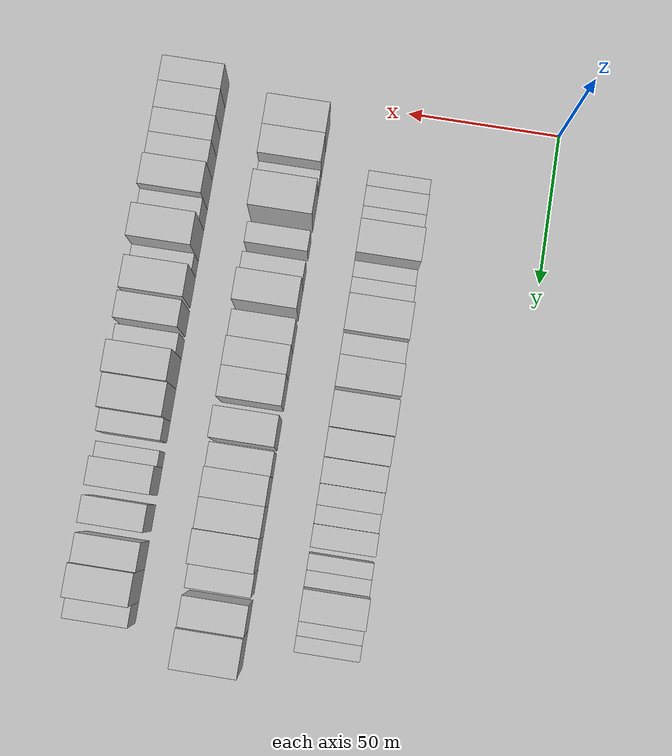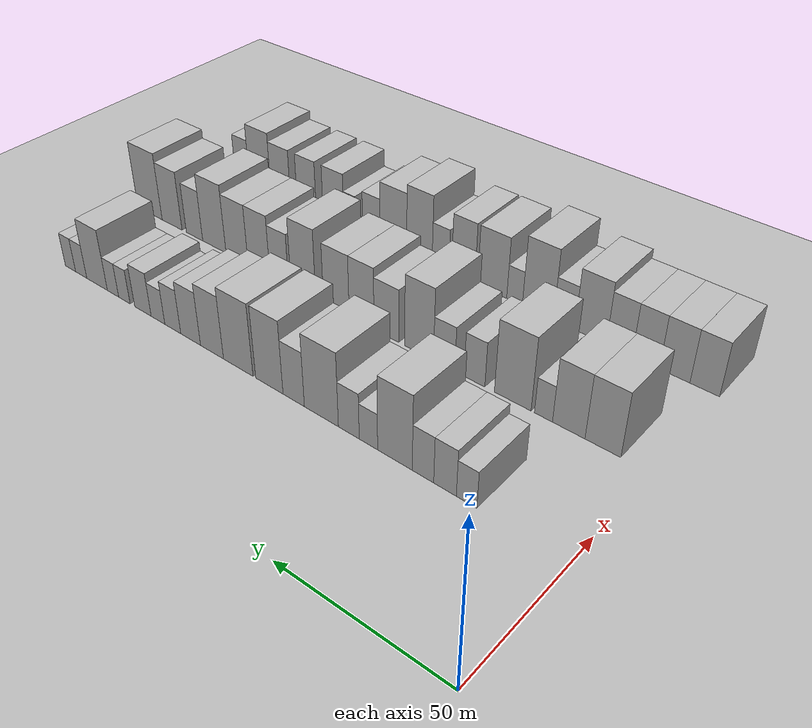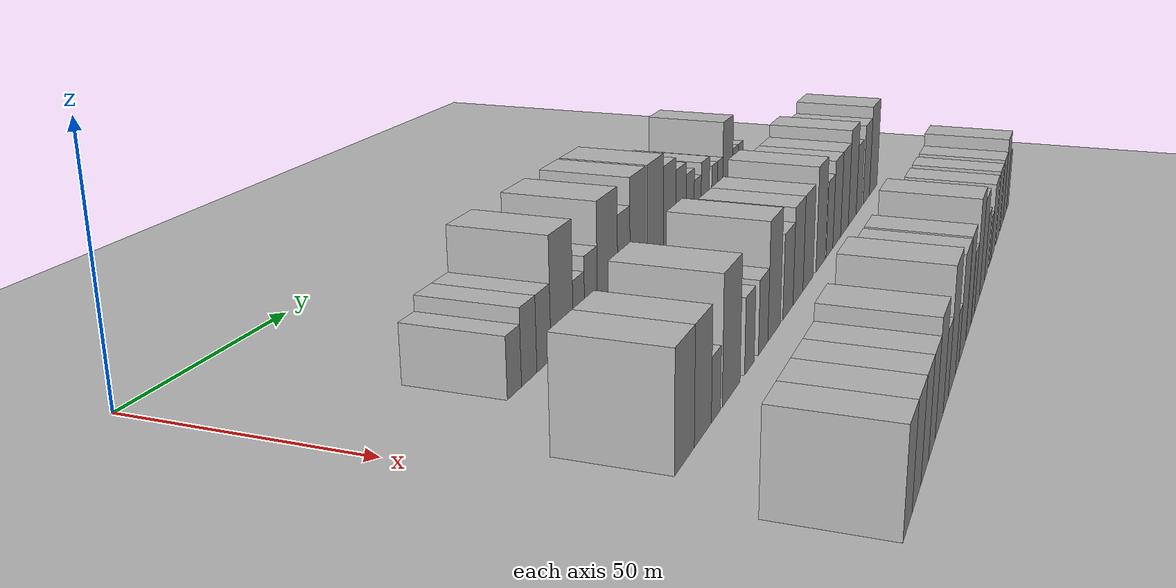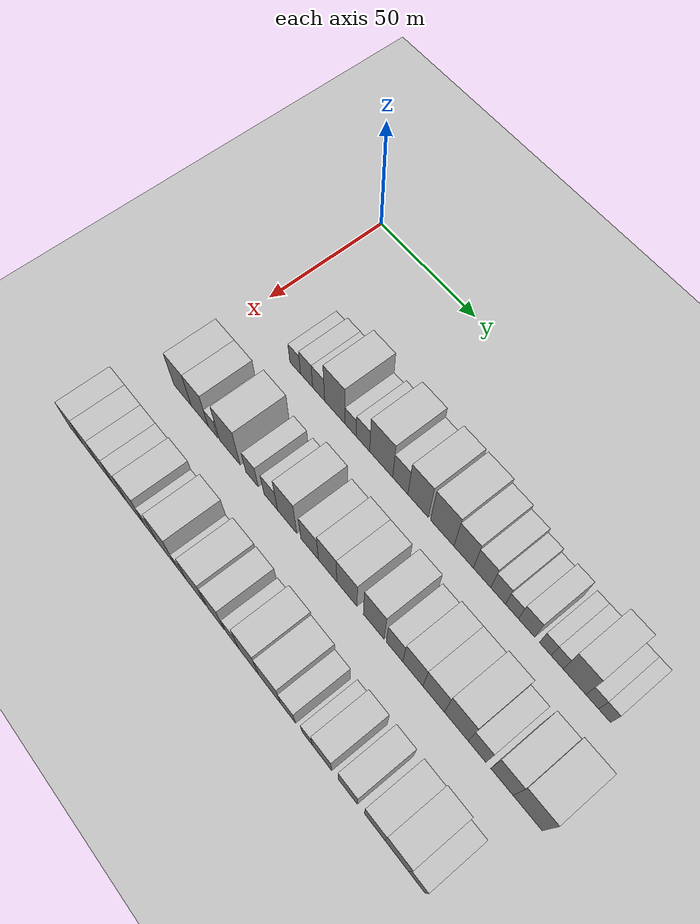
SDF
<sdf version="1.6">
 <world name="default">
  <include><name>ground_plane_1</name><uri>model://HANNAS_ground_plane</uri></include>
  <include>
   <name>ground_plane_2</name>
   <uri>model://HANNAS_ground_plane</uri>
   <pose>100 0 0  0 0 0</pose>
  </include>
  <model name="building_38">
   <static>1</static>
   <pose>50.0000 27.5653 0 0.000000 0.000000 0.000000</pose>
   <link name="link">
    <pose>0 0 6.00 0 0 0</pose>
    <collision name="collision"><geometry><box><size>20.0000 5.8085 12.0000</size></box></geometry></collision>
    <visual name="visual">
     <cast_shadows>0</cast_shadows>
     <geometry><box><size>20.0000 5.8085 12.0000</size></box></geometry>
     <material>
      <script>
       <uri>model://HANNAS_wall/materials/scripts</uri>
       <uri>model://HANNAS_wall/materials/textures</uri>
       <name>vrc/HANNAS_wall</name>
      </script>
     </material>
    </visual>
   </link>
  </model>
  <model name="building_39">
   <static>1</static>
   <pose>50.0000 33.7548 0 0.000000 0.000000 0.000000</pose>
   <link name="link">
    <pose>0 0 7.50 0 0 0</pose>
    <collision name="collision"><geometry><box><size>20.0000 6.5705 15.0000</size></box></geometry></collision>
    <visual name="visual">
     <cast_shadows>0</cast_shadows>
     <geometry><box><size>20.0000 6.5705 15.0000</size></box></geometry>
     <material>
      <script>
       <uri>model://HANNAS_wall/materials/scripts</uri>
       <uri>model://HANNAS_wall/materials/textures</uri>
       <name>vrc/HANNAS_wall</name>
      </script>
     </material>
    </visual>
   </link>
  </model>
  <model name="building_40">
   <static>1</static>
   <pose>50.0000 40.2345 0 0.000000 0.000000 0.000000</pose>
   <link name="link">
    <pose>0 0 7.50 0 0 0</pose>
    <collision name="collision"><geometry><box><size>20.0000 6.3889 15.0000</size></box></geometry></collision>
    <visual name="visual">
     <cast_shadows>0</cast_shadows>
     <geometry><box><size>20.0000 6.3889 15.0000</size></box></geometry>
     <material>
      <script>
       <uri>model://HANNAS_wall/materials/scripts</uri>
       <uri>model://HANNAS_wall/materials/textures</uri>
       <name>vrc/HANNAS_wall</name>
      </script>
     </material>
    </visual>
   </link>
  </model>
  <model name="building_41">
   <static>1</static>
   <pose>50.0000 48.7555 0 0.000000 0.000000 0.000000</pose>
   <link name="link">
    <pose>0 0 12.00 0 0 0</pose>
    <collision name="collision"><geometry><box><size>20.0000 10.6532 24.0000</size></box></geometry></collision>
    <visual name="visual">
     <cast_shadows>0</cast_shadows>
     <geometry><box><size>20.0000 10.6532 24.0000</size></box></geometry>
     <material>
      <script>
       <uri>model://HANNAS_wall/materials/scripts</uri>
       <uri>model://HANNAS_wall/materials/textures</uri>
       <name>vrc/HANNAS_wall</name>
      </script>
     </material>
    </visual>
   </link>
  </model>
  <model name="building_42">
   <static>1</static>
   <pose>50.0000 56.9968 0 0.000000 0.000000 0.000000</pose>
   <link name="link">
    <pose>0 0 6.00 0 0 0</pose>
    <collision name="collision"><geometry><box><size>20.0000 5.8294 12.0000</size></box></geometry></collision>
    <visual name="visual">
     <cast_shadows>0</cast_shadows>
     <geometry><box><size>20.0000 5.8294 12.0000</size></box></geometry>
     <material>
      <script>
       <uri>model://HANNAS_wall/materials/scripts</uri>
       <uri>model://HANNAS_wall/materials/textures</uri>
       <name>vrc/HANNAS_wall</name>
      </script>
     </material>
    </visual>
   </link>
  </model>
  <model name="building_43">
   <static>1</static>
   <pose>50.0000 63.3026 0 0.000000 0.000000 0.000000</pose>
   <link name="link">
    <pose>0 0 7.50 0 0 0</pose>
    <collision name="collision"><geometry><box><size>20.0000 6.7822 15.0000</size></box></geometry></collision>
    <visual name="visual">
     <cast_shadows>0</cast_shadows>
     <geometry><box><size>20.0000 6.7822 15.0000</size></box></geometry>
     <material>
      <script>
       <uri>model://HANNAS_wall/materials/scripts</uri>
       <uri>model://HANNAS_wall/materials/textures</uri>
       <name>vrc/HANNAS_wall</name>
      </script>
     </material>
    </visual>
   </link>
  </model>
  <model name="building_44">
   <static>1</static>
   <pose>50.0000 72.4216 0 0.000000 0.000000 0.000000</pose>
   <link name="link">
    <pose>0 0 12.00 0 0 0</pose>
    <collision name="collision"><geometry><box><size>20.0000 11.4557 24.0000</size></box></geometry></collision>
    <visual name="visual">
     <cast_shadows>0</cast_shadows>
     <geometry><box><size>20.0000 11.4557 24.0000</size></box></geometry>
     <material>
      <script>
       <uri>model://HANNAS_wall/materials/scripts</uri>
       <uri>model://HANNAS_wall/materials/textures</uri>
       <name>vrc/HANNAS_wall</name>
      </script>
     </material>
    </visual>
   </link>
  </model>
  <model name="building_45">
   <static>1</static>
   <pose>50.0000 81.8781 0 0.000000 0.000000 0.000000</pose>
   <link name="link">
    <pose>0 0 9.00 0 0 0</pose>
    <collision name="collision"><geometry><box><size>20.0000 7.4574 18.0000</size></box></geometry></collision>
    <visual name="visual">
     <cast_shadows>0</cast_shadows>
     <geometry><box><size>20.0000 7.4574 18.0000</size></box></geometry>
     <material>
      <script>
       <uri>model://HANNAS_wall/materials/scripts</uri>
       <uri>model://HANNAS_wall/materials/textures</uri>
       <name>vrc/HANNAS_wall</name>
      </script>
     </material>
    </visual>
   </link>
  </model>
  <model name="building_46">
   <static>1</static>
   <pose>50.0000 90.5169 0 0.000000 0.000000 0.000000</pose>
   <link name="link">
    <pose>0 0 12.00 0 0 0</pose>
    <collision name="collision"><geometry><box><size>20.0000 9.8202 24.0000</size></box></geometry></collision>
    <visual name="visual">
     <cast_shadows>0</cast_shadows>
     <geometry><box><size>20.0000 9.8202 24.0000</size></box></geometry>
     <material>
      <script>
       <uri>model://HANNAS_wall/materials/scripts</uri>
       <uri>model://HANNAS_wall/materials/textures</uri>
       <name>vrc/HANNAS_wall</name>
      </script>
     </material>
    </visual>
   </link>
  </model>
  <model name="building_47">
   <static>1</static>
   <pose>50.0000 101.9559 0 0.000000 0.000000 0.000000</pose>
   <link name="link">
    <pose>0 0 12.00 0 0 0</pose>
    <collision name="collision"><geometry><box><size>20.0000 11.0579 24.0000</size></box></geometry></collision>
    <visual name="visual">
     <cast_shadows>0</cast_shadows>
     <geometry><box><size>20.0000 11.0579 24.0000</size></box></geometry>
     <material>
      <script>
       <uri>model://HANNAS_wall/materials/scripts</uri>
       <uri>model://HANNAS_wall/materials/textures</uri>
       <name>vrc/HANNAS_wall</name>
      </script>
     </material>
    </visual>
   </link>
  </model>
  <model name="building_48">
   <static>1</static>
   <pose>50.0000 111.9434 0 0.000000 0.000000 0.000000</pose>
   <link name="link">
    <pose>0 0 10.50 0 0 0</pose>
    <collision name="collision"><geometry><box><size>20.0000 8.9171 21.0000</size></box></geometry></collision>
    <visual name="visual">
     <cast_shadows>0</cast_shadows>
     <geometry><box><size>20.0000 8.9171 21.0000</size></box></geometry>
     <material>
      <script>
       <uri>model://HANNAS_wall/materials/scripts</uri>
       <uri>model://HANNAS_wall/materials/textures</uri>
       <name>vrc/HANNAS_wall</name>
      </script>
     </material>
    </visual>
   </link>
  </model>
  <model name="building_49">
   <static>1</static>
   <pose>50.0000 120.3547 0 0.000000 0.000000 0.000000</pose>
   <link name="link">
    <pose>0 0 9.00 0 0 0</pose>
    <collision name="collision"><geometry><box><size>20.0000 7.9056 18.0000</size></box></geometry></collision>
    <visual name="visual">
     <cast_shadows>0</cast_shadows>
     <geometry><box><size>20.0000 7.9056 18.0000</size></box></geometry>
     <material>
      <script>
       <uri>model://HANNAS_wall/materials/scripts</uri>
       <uri>model://HANNAS_wall/materials/textures</uri>
       <name>vrc/HANNAS_wall</name>
      </script>
     </material>
    </visual>
   </link>
  </model>
  <model name="building_50">
   <static>1</static>
   <pose>50.0000 127.5701 0 0.000000 0.000000 0.000000</pose>
   <link name="link">
    <pose>0 0 7.50 0 0 0</pose>
    <collision name="collision"><geometry><box><size>20.0000 6.5252 15.0000</size></box></geometry></collision>
    <visual name="visual">
     <cast_shadows>0</cast_shadows>
     <geometry><box><size>20.0000 6.5252 15.0000</size></box></geometry>
     <material>
      <script>
       <uri>model://HANNAS_wall/materials/scripts</uri>
       <uri>model://HANNAS_wall/materials/textures</uri>
       <name>vrc/HANNAS_wall</name>
      </script>
     </material>
    </visual>
   </link>
  </model>
  <model name="building_51">
   <static>1</static>
   <pose>50.0000 133.6937 0 0.000000 0.000000 0.000000</pose>
   <link name="link">
    <pose>0 0 6.00 0 0 0</pose>
    <collision name="collision"><geometry><box><size>20.0000 5.7220 12.0000</size></box></geometry></collision>
    <visual name="visual">
     <cast_shadows>0</cast_shadows>
     <geometry><box><size>20.0000 5.7220 12.0000</size></box></geometry>
     <material>
      <script>
       <uri>model://HANNAS_wall/materials/scripts</uri>
       <uri>model://HANNAS_wall/materials/textures</uri>
       <name>vrc/HANNAS_wall</name>
      </script>
     </material>
    </visual>
   </link>
  </model>
  <model name="building_52">
   <static>1</static>
   <pose>50.0000 140.0764 0 0.000000 0.000000 0.000000</pose>
   <link name="link">
    <pose>0 0 7.50 0 0 0</pose>
    <collision name="collision"><geometry><box><size>20.0000 7.0433 15.0000</size></box></geometry></collision>
    <visual name="visual">
     <cast_shadows>0</cast_shadows>
     <geometry><box><size>20.0000 7.0433 15.0000</size></box></geometry>
     <material>
      <script>
       <uri>model://HANNAS_wall/materials/scripts</uri>
       <uri>model://HANNAS_wall/materials/textures</uri>
       <name>vrc/HANNAS_wall</name>
      </script>
     </material>
    </visual>
   </link>
  </model>
  <model name="building_53">
   <static>1</static>
   <pose>50.0000 148.0953 0 0.000000 0.000000 0.000000</pose>
   <link name="link">
    <pose>0 0 6.00 0 0 0</pose>
    <collision name="collision"><geometry><box><size>20.0000 4.9945 12.0000</size></box></geometry></collision>
    <visual name="visual">
     <cast_shadows>0</cast_shadows>
     <geometry><box><size>20.0000 4.9945 12.0000</size></box></geometry>
     <material>
      <script>
       <uri>model://HANNAS_wall/materials/scripts</uri>
       <uri>model://HANNAS_wall/materials/textures</uri>
       <name>vrc/HANNAS_wall</name>
      </script>
     </material>
    </visual>
   </link>
  </model>
  <model name="building_54">
   <static>1</static>
   <pose>50.0000 153.1043 0 0.000000 0.000000 0.000000</pose>
   <link name="link">
    <pose>0 0 6.00 0 0 0</pose>
    <collision name="collision"><geometry><box><size>20.0000 5.0234 12.0000</size></box></geometry></collision>
    <visual name="visual">
     <cast_shadows>0</cast_shadows>
     <geometry><box><size>20.0000 5.0234 12.0000</size></box></geometry>
     <material>
      <script>
       <uri>model://HANNAS_wall/materials/scripts</uri>
       <uri>model://HANNAS_wall/materials/textures</uri>
       <name>vrc/HANNAS_wall</name>
      </script>
     </material>
    </visual>
   </link>
  </model>
  <model name="building_55">
   <static>1</static>
   <pose>50.0000 160.3275 0 0.000000 0.000000 0.000000</pose>
   <link name="link">
    <pose>0 0 10.50 0 0 0</pose>
    <collision name="collision"><geometry><box><size>20.0000 9.4230 21.0000</size></box></geometry></collision>
    <visual name="visual">
     <cast_shadows>0</cast_shadows>
     <geometry><box><size>20.0000 9.4230 21.0000</size></box></geometry>
     <material>
      <script>
       <uri>model://HANNAS_wall/materials/scripts</uri>
       <uri>model://HANNAS_wall/materials/textures</uri>
       <name>vrc/HANNAS_wall</name>
      </script>
     </material>
    </visual>
   </link>
  </model>
  <model name="building_56">
   <static>1</static>
   <pose>50.0000 167.6405 0 0.000000 0.000000 0.000000</pose>
   <link name="link">
    <pose>0 0 6.00 0 0 0</pose>
    <collision name="collision"><geometry><box><size>20.0000 5.2029 12.0000</size></box></geometry></collision>
    <visual name="visual">
     <cast_shadows>0</cast_shadows>
     <geometry><box><size>20.0000 5.2029 12.0000</size></box></geometry>
     <material>
      <script>
       <uri>model://HANNAS_wall/materials/scripts</uri>
       <uri>model://HANNAS_wall/materials/textures</uri>
       <name>vrc/HANNAS_wall</name>
      </script>
     </material>
    </visual>
   </link>
  </model>
  <model name="building_57">
   <static>1</static>
   <pose>50.0000 172.6614 0 0.000000 0.000000 0.000000</pose>
   <link name="link">
    <pose>0 0 6.00 0 0 0</pose>
    <collision name="collision"><geometry><box><size>20.0000 4.8389 12.0000</size></box></geometry></collision>
    <visual name="visual">
     <cast_shadows>0</cast_shadows>
     <geometry><box><size>20.0000 4.8389 12.0000</size></box></geometry>
     <material>
      <script>
       <uri>model://HANNAS_wall/materials/scripts</uri>
       <uri>model://HANNAS_wall/materials/textures</uri>
       <name>vrc/HANNAS_wall</name>
      </script>
     </material>
    </visual>
   </link>
  </model>
  <model name="building_122">
   <static>1</static>
   <pose>85.0000 12.7122 0 0.000000 0.000000 0.000000</pose>
   <link name="link">
    <pose>0 0 10.50 0 0 0</pose>
    <collision name="collision"><geometry><box><size>20.0000 9.9595 21.0000</size></box></geometry></collision>
    <visual name="visual">
     <cast_shadows>0</cast_shadows>
     <geometry><box><size>20.0000 9.9595 21.0000</size></box></geometry>
     <material>
      <script>
       <uri>model://HANNAS_wall/materials/scripts</uri>
       <uri>model://HANNAS_wall/materials/textures</uri>
       <name>vrc/HANNAS_wall</name>
      </script>
     </material>
    </visual>
   </link>
  </model>
  <model name="building_123">
   <static>1</static>
   <pose>85.0000 22.3716 0 0.000000 0.000000 0.000000</pose>
   <link name="link">
    <pose>0 0 10.50 0 0 0</pose>
    <collision name="collision"><geometry><box><size>20.0000 9.3591 21.0000</size></box></geometry></collision>
    <visual name="visual">
     <cast_shadows>0</cast_shadows>
     <geometry><box><size>20.0000 9.3591 21.0000</size></box></geometry>
     <material>
      <script>
       <uri>model://HANNAS_wall/materials/scripts</uri>
       <uri>model://HANNAS_wall/materials/textures</uri>
       <name>vrc/HANNAS_wall</name>
      </script>
     </material>
    </visual>
   </link>
  </model>
  <model name="building_124">
   <static>1</static>
   <pose>85.0000 29.7133 0 0.000000 0.000000 0.000000</pose>
   <link name="link">
    <pose>0 0 6.00 0 0 0</pose>
    <collision name="collision"><geometry><box><size>20.0000 5.3245 12.0000</size></box></geometry></collision>
    <visual name="visual">
     <cast_shadows>0</cast_shadows>
     <geometry><box><size>20.0000 5.3245 12.0000</size></box></geometry>
     <material>
      <script>
       <uri>model://HANNAS_wall/materials/scripts</uri>
       <uri>model://HANNAS_wall/materials/textures</uri>
       <name>vrc/HANNAS_wall</name>
      </script>
     </material>
    </visual>
   </link>
  </model>
  <model name="building_125">
   <static>1</static>
   <pose>85.0000 38.9851 0 0.000000 0.000000 0.000000</pose>
   <link name="link">
    <pose>0 0 12.00 0 0 0</pose>
    <collision name="collision"><geometry><box><size>20.0000 11.2191 24.0000</size></box></geometry></collision>
    <visual name="visual">
     <cast_shadows>0</cast_shadows>
     <geometry><box><size>20.0000 11.2191 24.0000</size></box></geometry>
     <material>
      <script>
       <uri>model://HANNAS_wall/materials/scripts</uri>
       <uri>model://HANNAS_wall/materials/textures</uri>
       <name>vrc/HANNAS_wall</name>
      </script>
     </material>
    </visual>
   </link>
  </model>
  <model name="building_126">
   <static>1</static>
   <pose>85.0000 50.9117 0 0.000000 0.000000 0.000000</pose>
   <link name="link">
    <pose>0 0 7.50 0 0 0</pose>
    <collision name="collision"><geometry><box><size>20.0000 6.6339 15.0000</size></box></geometry></collision>
    <visual name="visual">
     <cast_shadows>0</cast_shadows>
     <geometry><box><size>20.0000 6.6339 15.0000</size></box></geometry>
     <material>
      <script>
       <uri>model://HANNAS_wall/materials/scripts</uri>
       <uri>model://HANNAS_wall/materials/textures</uri>
       <name>vrc/HANNAS_wall</name>
      </script>
     </material>
    </visual>
   </link>
  </model>
  <model name="building_127">
   <static>1</static>
   <pose>85.0000 60.7624 0 0.000000 0.000000 0.000000</pose>
   <link name="link">
    <pose>0 0 7.50 0 0 0</pose>
    <collision name="collision"><geometry><box><size>20.0000 7.0675 15.0000</size></box></geometry></collision>
    <visual name="visual">
     <cast_shadows>0</cast_shadows>
     <geometry><box><size>20.0000 7.0675 15.0000</size></box></geometry>
     <material>
      <script>
       <uri>model://HANNAS_wall/materials/scripts</uri>
       <uri>model://HANNAS_wall/materials/textures</uri>
       <name>vrc/HANNAS_wall</name>
      </script>
     </material>
    </visual>
   </link>
  </model>
  <model name="building_128">
   <static>1</static>
   <pose>85.0000 69.2214 0 0.000000 0.000000 0.000000</pose>
   <link name="link">
    <pose>0 0 12.00 0 0 0</pose>
    <collision name="collision"><geometry><box><size>20.0000 9.8506 24.0000</size></box></geometry></collision>
    <visual name="visual">
     <cast_shadows>0</cast_shadows>
     <geometry><box><size>20.0000 9.8506 24.0000</size></box></geometry>
     <material>
      <script>
       <uri>model://HANNAS_wall/materials/scripts</uri>
       <uri>model://HANNAS_wall/materials/textures</uri>
       <name>vrc/HANNAS_wall</name>
      </script>
     </material>
    </visual>
   </link>
  </model>
  <model name="building_129">
   <static>1</static>
   <pose>85.0000 80.5235 0 0.000000 0.000000 0.000000</pose>
   <link name="link">
    <pose>0 0 9.00 0 0 0</pose>
    <collision name="collision"><geometry><box><size>20.0000 8.7534 18.0000</size></box></geometry></collision>
    <visual name="visual">
     <cast_shadows>0</cast_shadows>
     <geometry><box><size>20.0000 8.7534 18.0000</size></box></geometry>
     <material>
      <script>
       <uri>model://HANNAS_wall/materials/scripts</uri>
       <uri>model://HANNAS_wall/materials/textures</uri>
       <name>vrc/HANNAS_wall</name>
      </script>
     </material>
    </visual>
   </link>
  </model>
  <model name="building_130">
   <static>1</static>
   <pose>85.0000 89.4196 0 0.000000 0.000000 0.000000</pose>
   <link name="link">
    <pose>0 0 10.50 0 0 0</pose>
    <collision name="collision"><geometry><box><size>20.0000 9.0389 21.0000</size></box></geometry></collision>
    <visual name="visual">
     <cast_shadows>0</cast_shadows>
     <geometry><box><size>20.0000 9.0389 21.0000</size></box></geometry>
     <material>
      <script>
       <uri>model://HANNAS_wall/materials/scripts</uri>
       <uri>model://HANNAS_wall/materials/textures</uri>
       <name>vrc/HANNAS_wall</name>
      </script>
     </material>
    </visual>
   </link>
  </model>
  <model name="building_131">
   <static>1</static>
   <pose>85.0000 98.7671 0 0.000000 0.000000 0.000000</pose>
   <link name="link">
    <pose>0 0 10.50 0 0 0</pose>
    <collision name="collision"><geometry><box><size>20.0000 9.6560 21.0000</size></box></geometry></collision>
    <visual name="visual">
     <cast_shadows>0</cast_shadows>
     <geometry><box><size>20.0000 9.6560 21.0000</size></box></geometry>
     <material>
      <script>
       <uri>model://HANNAS_wall/materials/scripts</uri>
       <uri>model://HANNAS_wall/materials/textures</uri>
       <name>vrc/HANNAS_wall</name>
      </script>
     </material>
    </visual>
   </link>
  </model>
  <model name="building_132">
   <static>1</static>
   <pose>85.0000 111.4162 0 0.000000 0.000000 0.000000</pose>
   <link name="link">
    <pose>0 0 12.00 0 0 0</pose>
    <collision name="collision"><geometry><box><size>20.0000 9.6422 24.0000</size></box></geometry></collision>
    <visual name="visual">
     <cast_shadows>0</cast_shadows>
     <geometry><box><size>20.0000 9.6422 24.0000</size></box></geometry>
     <material>
      <script>
       <uri>model://HANNAS_wall/materials/scripts</uri>
       <uri>model://HANNAS_wall/materials/textures</uri>
       <name>vrc/HANNAS_wall</name>
      </script>
     </material>
    </visual>
   </link>
  </model>
  <model name="building_133">
   <static>1</static>
   <pose>85.0000 121.0131 0 0.000000 0.000000 0.000000</pose>
   <link name="link">
    <pose>0 0 9.00 0 0 0</pose>
    <collision name="collision"><geometry><box><size>20.0000 7.5517 18.0000</size></box></geometry></collision>
    <visual name="visual">
     <cast_shadows>0</cast_shadows>
     <geometry><box><size>20.0000 7.5517 18.0000</size></box></geometry>
     <material>
      <script>
       <uri>model://HANNAS_wall/materials/scripts</uri>
       <uri>model://HANNAS_wall/materials/textures</uri>
       <name>vrc/HANNAS_wall</name>
      </script>
     </material>
    </visual>
   </link>
  </model>
  <model name="building_134">
   <static>1</static>
   <pose>85.0000 129.3277 0 0.000000 0.000000 0.000000</pose>
   <link name="link">
    <pose>0 0 10.50 0 0 0</pose>
    <collision name="collision"><geometry><box><size>20.0000 9.0775 21.0000</size></box></geometry></collision>
    <visual name="visual">
     <cast_shadows>0</cast_shadows>
     <geometry><box><size>20.0000 9.0775 21.0000</size></box></geometry>
     <material>
      <script>
       <uri>model://HANNAS_wall/materials/scripts</uri>
       <uri>model://HANNAS_wall/materials/textures</uri>
       <name>vrc/HANNAS_wall</name>
      </script>
     </material>
    </visual>
   </link>
  </model>
  <model name="building_135">
   <static>1</static>
   <pose>85.0000 138.6049 0 0.000000 0.000000 0.000000</pose>
   <link name="link">
    <pose>0 0 10.50 0 0 0</pose>
    <collision name="collision"><geometry><box><size>20.0000 9.4768 21.0000</size></box></geometry></collision>
    <visual name="visual">
     <cast_shadows>0</cast_shadows>
     <geometry><box><size>20.0000 9.4768 21.0000</size></box></geometry>
     <material>
      <script>
       <uri>model://HANNAS_wall/materials/scripts</uri>
       <uri>model://HANNAS_wall/materials/textures</uri>
       <name>vrc/HANNAS_wall</name>
      </script>
     </material>
    </visual>
   </link>
  </model>
  <model name="building_136">
   <static>1</static>
   <pose>85.0000 148.4688 0 0.000000 0.000000 0.000000</pose>
   <link name="link">
    <pose>0 0 12.00 0 0 0</pose>
    <collision name="collision"><geometry><box><size>20.0000 10.2510 24.0000</size></box></geometry></collision>
    <visual name="visual">
     <cast_shadows>0</cast_shadows>
     <geometry><box><size>20.0000 10.2510 24.0000</size></box></geometry>
     <material>
      <script>
       <uri>model://HANNAS_wall/materials/scripts</uri>
       <uri>model://HANNAS_wall/materials/textures</uri>
       <name>vrc/HANNAS_wall</name>
      </script>
     </material>
    </visual>
   </link>
  </model>
  <model name="building_137">
   <static>1</static>
   <pose>85.0000 157.2964 0 0.000000 0.000000 0.000000</pose>
   <link name="link">
    <pose>0 0 9.00 0 0 0</pose>
    <collision name="collision"><geometry><box><size>20.0000 7.4041 18.0000</size></box></geometry></collision>
    <visual name="visual">
     <cast_shadows>0</cast_shadows>
     <geometry><box><size>20.0000 7.4041 18.0000</size></box></geometry>
     <material>
      <script>
       <uri>model://HANNAS_wall/materials/scripts</uri>
       <uri>model://HANNAS_wall/materials/textures</uri>
       <name>vrc/HANNAS_wall</name>
      </script>
     </material>
    </visual>
   </link>
  </model>
  <model name="building_138">
   <static>1</static>
   <pose>85.0000 167.6320 0 0.000000 0.000000 0.000000</pose>
   <link name="link">
    <pose>0 0 10.50 0 0 0</pose>
    <collision name="collision"><geometry><box><size>20.0000 9.2671 21.0000</size></box></geometry></collision>
    <visual name="visual">
     <cast_shadows>0</cast_shadows>
     <geometry><box><size>20.0000 9.2671 21.0000</size></box></geometry>
     <material>
      <script>
       <uri>model://HANNAS_wall/materials/scripts</uri>
       <uri>model://HANNAS_wall/materials/textures</uri>
       <name>vrc/HANNAS_wall</name>
      </script>
     </material>
    </visual>
   </link>
  </model>
  <model name="building_139">
   <static>1</static>
   <pose>85.0000 178.0920 0 0.000000 0.000000 0.000000</pose>
   <link name="link">
    <pose>0 0 12.00 0 0 0</pose>
    <collision name="collision"><geometry><box><size>20.0000 11.6530 24.0000</size></box></geometry></collision>
    <visual name="visual">
     <cast_shadows>0</cast_shadows>
     <geometry><box><size>20.0000 11.6530 24.0000</size></box></geometry>
     <material>
      <script>
       <uri>model://HANNAS_wall/materials/scripts</uri>
       <uri>model://HANNAS_wall/materials/textures</uri>
       <name>vrc/HANNAS_wall</name>
      </script>
     </material>
    </visual>
   </link>
  </model>
  <model name="building_198">
   <static>1</static>
   <pose>120.0000 3.5927 0 0.000000 0.000000 0.000000</pose>
   <link name="link">
    <pose>0 0 9.00 0 0 0</pose>
    <collision name="collision"><geometry><box><size>20.0000 8.3133 18.0000</size></box></geometry></collision>
    <visual name="visual">
     <cast_shadows>0</cast_shadows>
     <geometry><box><size>20.0000 8.3133 18.0000</size></box></geometry>
     <material>
      <script>
       <uri>model://HANNAS_wall/materials/scripts</uri>
       <uri>model://HANNAS_wall/materials/textures</uri>
       <name>vrc/HANNAS_wall</name>
      </script>
     </material>
    </visual>
   </link>
  </model>
  <model name="building_199">
   <static>1</static>
   <pose>120.0000 12.1678 0 0.000000 0.000000 0.000000</pose>
   <link name="link">
    <pose>0 0 9.00 0 0 0</pose>
    <collision name="collision"><geometry><box><size>20.0000 8.8367 18.0000</size></box></geometry></collision>
    <visual name="visual">
     <cast_shadows>0</cast_shadows>
     <geometry><box><size>20.0000 8.8367 18.0000</size></box></geometry>
     <material>
      <script>
       <uri>model://HANNAS_wall/materials/scripts</uri>
       <uri>model://HANNAS_wall/materials/textures</uri>
       <name>vrc/HANNAS_wall</name>
      </script>
     </material>
    </visual>
   </link>
  </model>
  <model name="building_200">
   <static>1</static>
   <pose>120.0000 20.6286 0 0.000000 0.000000 0.000000</pose>
   <link name="link">
    <pose>0 0 9.00 0 0 0</pose>
    <collision name="collision"><geometry><box><size>20.0000 8.0849 18.0000</size></box></geometry></collision>
    <visual name="visual">
     <cast_shadows>0</cast_shadows>
     <geometry><box><size>20.0000 8.0849 18.0000</size></box></geometry>
     <material>
      <script>
       <uri>model://HANNAS_wall/materials/scripts</uri>
       <uri>model://HANNAS_wall/materials/textures</uri>
       <name>vrc/HANNAS_wall</name>
      </script>
     </material>
    </visual>
   </link>
  </model>
  <model name="building_201">
   <static>1</static>
   <pose>120.0000 28.6216 0 0.000000 0.000000 0.000000</pose>
   <link name="link">
    <pose>0 0 9.00 0 0 0</pose>
    <collision name="collision"><geometry><box><size>20.0000 7.9012 18.0000</size></box></geometry></collision>
    <visual name="visual">
     <cast_shadows>0</cast_shadows>
     <geometry><box><size>20.0000 7.9012 18.0000</size></box></geometry>
     <material>
      <script>
       <uri>model://HANNAS_wall/materials/scripts</uri>
       <uri>model://HANNAS_wall/materials/textures</uri>
       <name>vrc/HANNAS_wall</name>
      </script>
     </material>
    </visual>
   </link>
  </model>
  <model name="building_202">
   <static>1</static>
   <pose>120.0000 37.5349 0 0.000000 0.000000 0.000000</pose>
   <link name="link">
    <pose>0 0 10.50 0 0 0</pose>
    <collision name="collision"><geometry><box><size>20.0000 9.9254 21.0000</size></box></geometry></collision>
    <visual name="visual">
     <cast_shadows>0</cast_shadows>
     <geometry><box><size>20.0000 9.9254 21.0000</size></box></geometry>
     <material>
      <script>
       <uri>model://HANNAS_wall/materials/scripts</uri>
       <uri>model://HANNAS_wall/materials/textures</uri>
       <name>vrc/HANNAS_wall</name>
      </script>
     </material>
    </visual>
   </link>
  </model>
  <model name="building_203">
   <static>1</static>
   <pose>120.0000 45.9506 0 0.000000 0.000000 0.000000</pose>
   <link name="link">
    <pose>0 0 7.50 0 0 0</pose>
    <collision name="collision"><geometry><box><size>20.0000 6.9059 15.0000</size></box></geometry></collision>
    <visual name="visual">
     <cast_shadows>0</cast_shadows>
     <geometry><box><size>20.0000 6.9059 15.0000</size></box></geometry>
     <material>
      <script>
       <uri>model://HANNAS_wall/materials/scripts</uri>
       <uri>model://HANNAS_wall/materials/textures</uri>
       <name>vrc/HANNAS_wall</name>
      </script>
     </material>
    </visual>
   </link>
  </model>
  <model name="building_204">
   <static>1</static>
   <pose>120.0000 54.5827 0 0.000000 0.000000 0.000000</pose>
   <link name="link">
    <pose>0 0 12.00 0 0 0</pose>
    <collision name="collision"><geometry><box><size>20.0000 10.3583 24.0000</size></box></geometry></collision>
    <visual name="visual">
     <cast_shadows>0</cast_shadows>
     <geometry><box><size>20.0000 10.3583 24.0000</size></box></geometry>
     <material>
      <script>
       <uri>model://HANNAS_wall/materials/scripts</uri>
       <uri>model://HANNAS_wall/materials/textures</uri>
       <name>vrc/HANNAS_wall</name>
      </script>
     </material>
    </visual>
   </link>
  </model>
  <model name="building_205">
   <static>1</static>
   <pose>120.0000 62.4411 0 0.000000 0.000000 0.000000</pose>
   <link name="link">
    <pose>0 0 6.00 0 0 0</pose>
    <collision name="collision"><geometry><box><size>20.0000 5.3585 12.0000</size></box></geometry></collision>
    <visual name="visual">
     <cast_shadows>0</cast_shadows>
     <geometry><box><size>20.0000 5.3585 12.0000</size></box></geometry>
     <material>
      <script>
       <uri>model://HANNAS_wall/materials/scripts</uri>
       <uri>model://HANNAS_wall/materials/textures</uri>
       <name>vrc/HANNAS_wall</name>
      </script>
     </material>
    </visual>
   </link>
  </model>
  <model name="building_206">
   <static>1</static>
   <pose>120.0000 70.2324 0 0.000000 0.000000 0.000000</pose>
   <link name="link">
    <pose>0 0 10.50 0 0 0</pose>
    <collision name="collision"><geometry><box><size>20.0000 10.2241 21.0000</size></box></geometry></collision>
    <visual name="visual">
     <cast_shadows>0</cast_shadows>
     <geometry><box><size>20.0000 10.2241 21.0000</size></box></geometry>
     <material>
      <script>
       <uri>model://HANNAS_wall/materials/scripts</uri>
       <uri>model://HANNAS_wall/materials/textures</uri>
       <name>vrc/HANNAS_wall</name>
      </script>
     </material>
    </visual>
   </link>
  </model>
  <model name="building_207">
   <static>1</static>
   <pose>120.0000 80.5614 0 0.000000 0.000000 0.000000</pose>
   <link name="link">
    <pose>0 0 10.50 0 0 0</pose>
    <collision name="collision"><geometry><box><size>20.0000 8.4338 21.0000</size></box></geometry></collision>
    <visual name="visual">
     <cast_shadows>0</cast_shadows>
     <geometry><box><size>20.0000 8.4338 21.0000</size></box></geometry>
     <material>
      <script>
       <uri>model://HANNAS_wall/materials/scripts</uri>
       <uri>model://HANNAS_wall/materials/textures</uri>
       <name>vrc/HANNAS_wall</name>
      </script>
     </material>
    </visual>
   </link>
  </model>
  <model name="building_208">
   <static>1</static>
   <pose>120.0000 88.8926 0 0.000000 0.000000 0.000000</pose>
   <link name="link">
    <pose>0 0 7.50 0 0 0</pose>
    <collision name="collision"><geometry><box><size>20.0000 6.2287 15.0000</size></box></geometry></collision>
    <visual name="visual">
     <cast_shadows>0</cast_shadows>
     <geometry><box><size>20.0000 6.2287 15.0000</size></box></geometry>
     <material>
      <script>
       <uri>model://HANNAS_wall/materials/scripts</uri>
       <uri>model://HANNAS_wall/materials/textures</uri>
       <name>vrc/HANNAS_wall</name>
      </script>
     </material>
    </visual>
   </link>
  </model>
  <model name="building_209">
   <static>1</static>
   <pose>120.0000 96.8822 0 0.000000 0.000000 0.000000</pose>
   <link name="link">
    <pose>0 0 12.00 0 0 0</pose>
    <collision name="collision"><geometry><box><size>20.0000 9.7505 24.0000</size></box></geometry></collision>
    <visual name="visual">
     <cast_shadows>0</cast_shadows>
     <geometry><box><size>20.0000 9.7505 24.0000</size></box></geometry>
     <material>
      <script>
       <uri>model://HANNAS_wall/materials/scripts</uri>
       <uri>model://HANNAS_wall/materials/textures</uri>
       <name>vrc/HANNAS_wall</name>
      </script>
     </material>
    </visual>
   </link>
  </model>
  <model name="building_210">
   <static>1</static>
   <pose>120.0000 106.9940 0 0.000000 0.000000 0.000000</pose>
   <link name="link">
    <pose>0 0 10.50 0 0 0</pose>
    <collision name="collision"><geometry><box><size>20.0000 10.4731 21.0000</size></box></geometry></collision>
    <visual name="visual">
     <cast_shadows>0</cast_shadows>
     <geometry><box><size>20.0000 10.4731 21.0000</size></box></geometry>
     <material>
      <script>
       <uri>model://HANNAS_wall/materials/scripts</uri>
       <uri>model://HANNAS_wall/materials/textures</uri>
       <name>vrc/HANNAS_wall</name>
      </script>
     </material>
    </visual>
   </link>
  </model>
  <model name="building_211">
   <static>1</static>
   <pose>120.0000 115.7132 0 0.000000 0.000000 0.000000</pose>
   <link name="link">
    <pose>0 0 7.50 0 0 0</pose>
    <collision name="collision"><geometry><box><size>20.0000 6.9651 15.0000</size></box></geometry></collision>
    <visual name="visual">
     <cast_shadows>0</cast_shadows>
     <geometry><box><size>20.0000 6.9651 15.0000</size></box></geometry>
     <material>
      <script>
       <uri>model://HANNAS_wall/materials/scripts</uri>
       <uri>model://HANNAS_wall/materials/textures</uri>
       <name>vrc/HANNAS_wall</name>
      </script>
     </material>
    </visual>
   </link>
  </model>
  <model name="building_212">
   <static>1</static>
   <pose>120.0000 124.6212 0 0.000000 0.000000 0.000000</pose>
   <link name="link">
    <pose>0 0 6.00 0 0 0</pose>
    <collision name="collision"><geometry><box><size>20.0000 4.8510 12.0000</size></box></geometry></collision>
    <visual name="visual">
     <cast_shadows>0</cast_shadows>
     <geometry><box><size>20.0000 4.8510 12.0000</size></box></geometry>
     <material>
      <script>
       <uri>model://HANNAS_wall/materials/scripts</uri>
       <uri>model://HANNAS_wall/materials/textures</uri>
       <name>vrc/HANNAS_wall</name>
      </script>
     </material>
    </visual>
   </link>
  </model>
  <model name="building_213">
   <static>1</static>
   <pose>120.0000 131.4107 0 0.000000 0.000000 0.000000</pose>
   <link name="link">
    <pose>0 0 9.00 0 0 0</pose>
    <collision name="collision"><geometry><box><size>20.0000 8.7279 18.0000</size></box></geometry></collision>
    <visual name="visual">
     <cast_shadows>0</cast_shadows>
     <geometry><box><size>20.0000 8.7279 18.0000</size></box></geometry>
     <material>
      <script>
       <uri>model://HANNAS_wall/materials/scripts</uri>
       <uri>model://HANNAS_wall/materials/textures</uri>
       <name>vrc/HANNAS_wall</name>
      </script>
     </material>
    </visual>
   </link>
  </model>
  <model name="building_214">
   <static>1</static>
   <pose>120.0000 142.9406 0 0.000000 0.000000 0.000000</pose>
   <link name="link">
    <pose>0 0 9.00 0 0 0</pose>
    <collision name="collision"><geometry><box><size>20.0000 8.3318 18.0000</size></box></geometry></collision>
    <visual name="visual">
     <cast_shadows>0</cast_shadows>
     <geometry><box><size>20.0000 8.3318 18.0000</size></box></geometry>
     <material>
      <script>
       <uri>model://HANNAS_wall/materials/scripts</uri>
       <uri>model://HANNAS_wall/materials/textures</uri>
       <name>vrc/HANNAS_wall</name>
      </script>
     </material>
    </visual>
   </link>
  </model>
  <model name="building_215">
   <static>1</static>
   <pose>120.0000 154.5428 0 0.000000 0.000000 0.000000</pose>
   <link name="link">
    <pose>0 0 9.00 0 0 0</pose>
    <collision name="collision"><geometry><box><size>20.0000 8.8727 18.0000</size></box></geometry></collision>
    <visual name="visual">
     <cast_shadows>0</cast_shadows>
     <geometry><box><size>20.0000 8.8727 18.0000</size></box></geometry>
     <material>
      <script>
       <uri>model://HANNAS_wall/materials/scripts</uri>
       <uri>model://HANNAS_wall/materials/textures</uri>
       <name>vrc/HANNAS_wall</name>
      </script>
     </material>
    </visual>
   </link>
  </model>
  <model name="building_216">
   <static>1</static>
   <pose>120.0000 163.9867 0 0.000000 0.000000 0.000000</pose>
   <link name="link">
    <pose>0 0 10.50 0 0 0</pose>
    <collision name="collision"><geometry><box><size>20.0000 10.0150 21.0000</size></box></geometry></collision>
    <visual name="visual">
     <cast_shadows>0</cast_shadows>
     <geometry><box><size>20.0000 10.0150 21.0000</size></box></geometry>
     <material>
      <script>
       <uri>model://HANNAS_wall/materials/scripts</uri>
       <uri>model://HANNAS_wall/materials/textures</uri>
       <name>vrc/HANNAS_wall</name>
      </script>
     </material>
    </visual>
   </link>
  </model>
  <model name="building_217">
   <static>1</static>
   <pose>120.0000 172.3417 0 0.000000 0.000000 0.000000</pose>
   <link name="link">
    <pose>0 0 7.50 0 0 0</pose>
    <collision name="collision"><geometry><box><size>20.0000 6.6951 15.0000</size></box></geometry></collision>
    <visual name="visual">
     <cast_shadows>0</cast_shadows>
     <geometry><box><size>20.0000 6.6951 15.0000</size></box></geometry>
     <material>
      <script>
       <uri>model://HANNAS_wall/materials/scripts</uri>
       <uri>model://HANNAS_wall/materials/textures</uri>
       <name>vrc/HANNAS_wall</name>
      </script>
     </material>
    </visual>
   </link>
  </model>
 </world>
</sdf>
